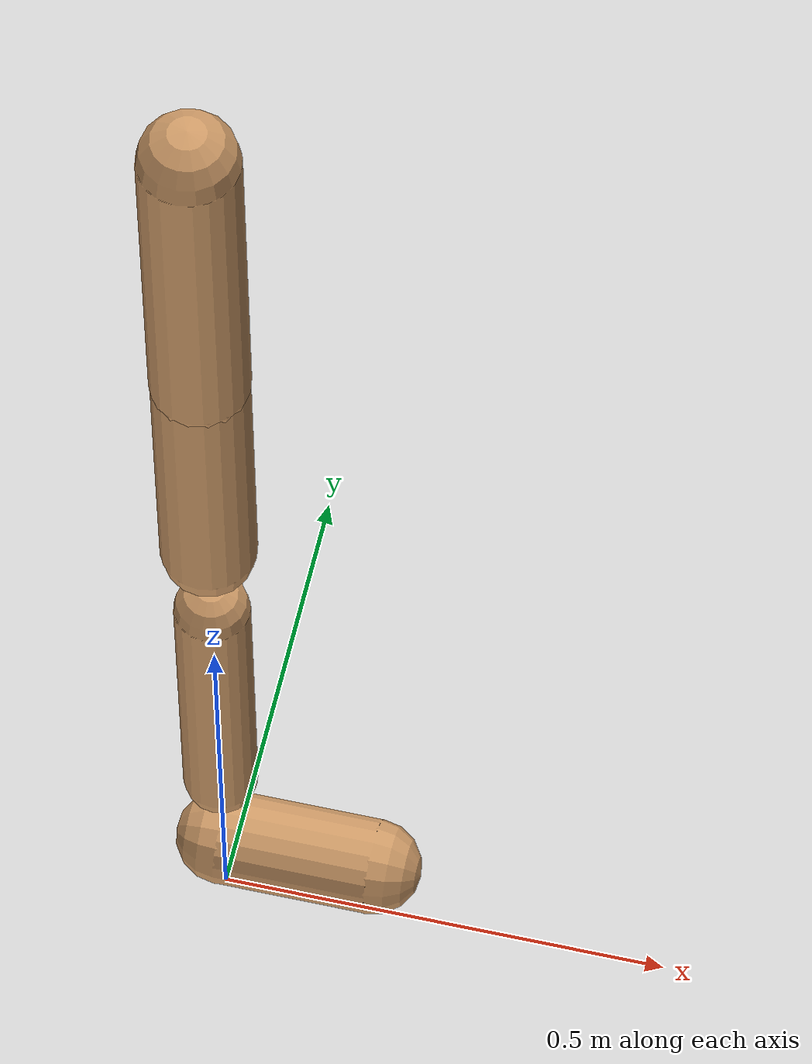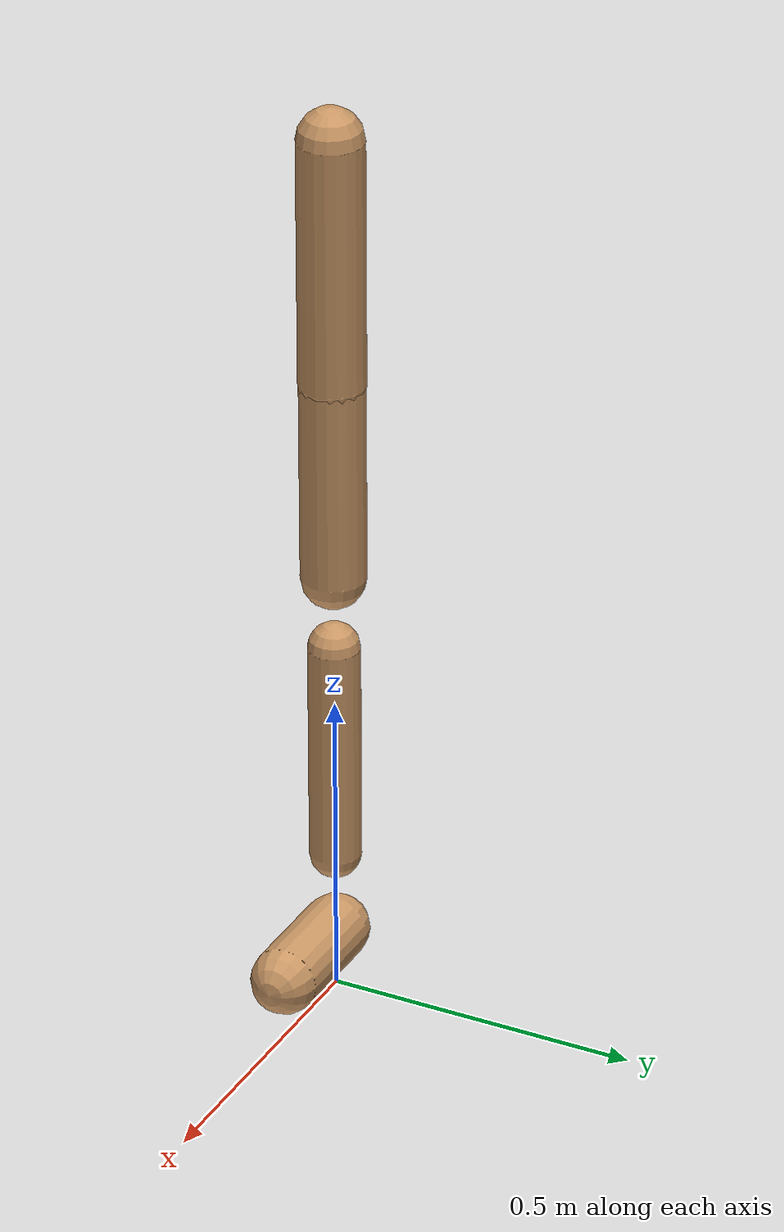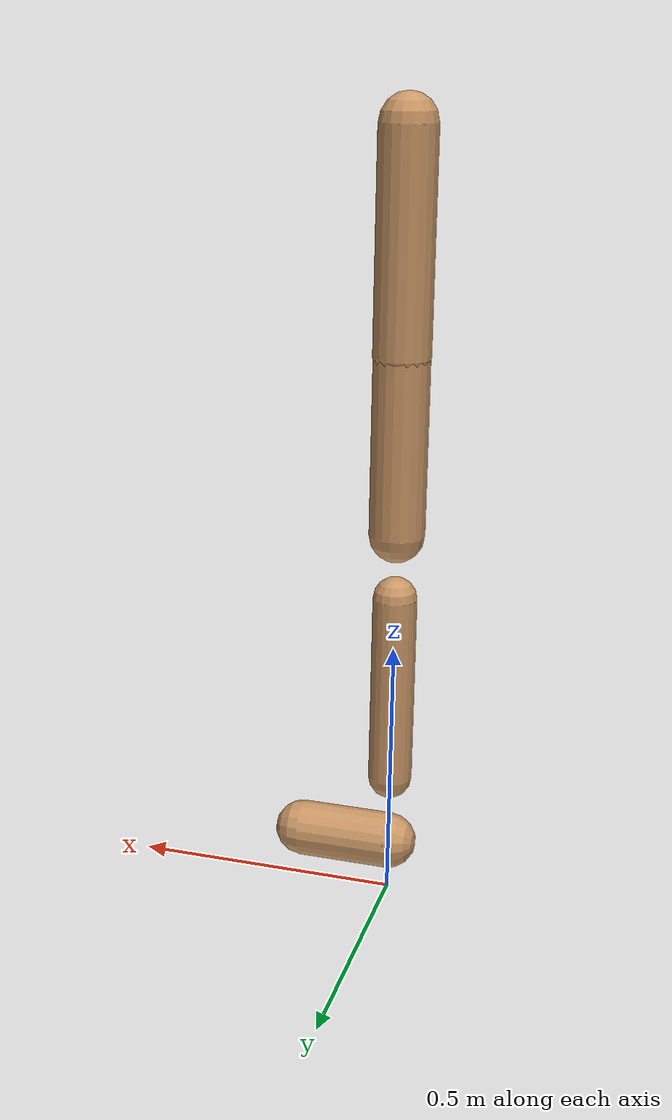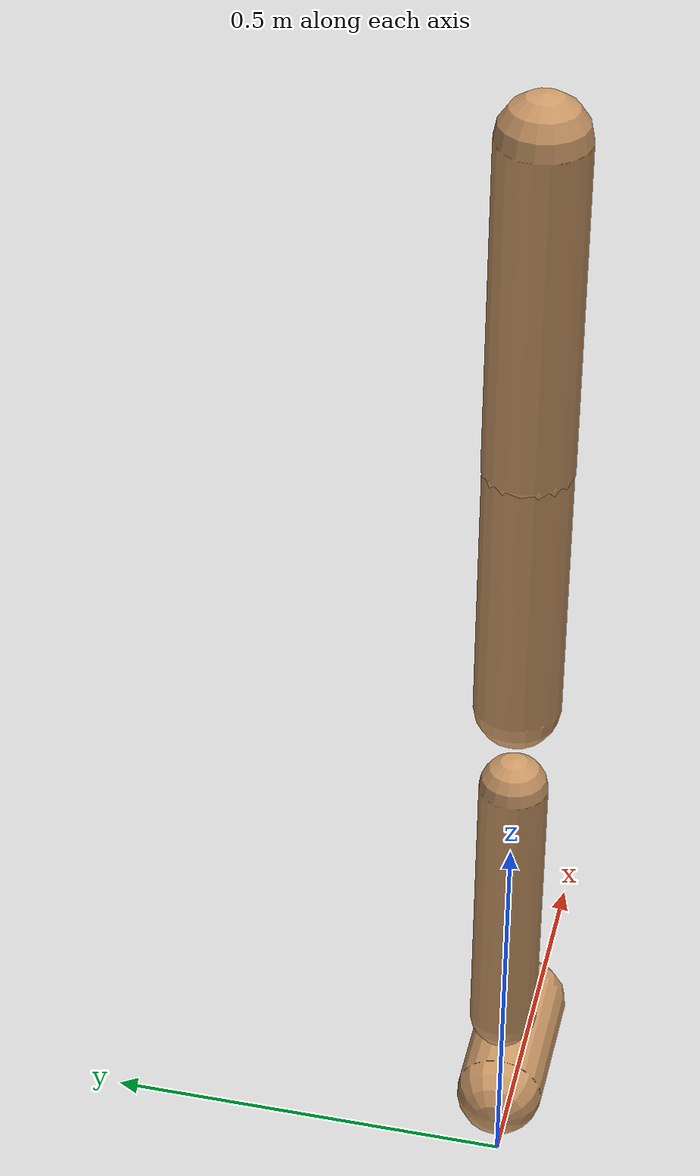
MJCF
<mujoco model="walker2d">
  <compiler angle="degree" coordinate="global" inertiafromgeom="true" />
  <default>
    <joint armature="0.01" damping=".1" limited="true" />
    <geom conaffinity="0" condim="3" contype="1" density="1000" friction="0.8 .1 .1" rgba="0.8 0.6 .4 1" />
  </default>
  <option integrator="RK4" timestep="0.002" />
  <worldbody>

    <body name="torso" pos="0 0 -0.26026626808486386">
      <joint armature="0" axis="1 0 0" damping="0" limited="false" name="ignorex" pos="0 0 0" stiffness="0" type="slide" />
      <joint armature="0" axis="0 0 1" damping="0" limited="false" name="ignorez" pos="0 0 0" ref="1.25" stiffness="0" type="slide" />
      <joint armature="0" axis="0 1 0" damping="0" limited="false" name="ignorey" pos="0 0 0" stiffness="0" type="hinge" />
      <geom fromto="0 0 1.45 0 0 1.05" name="torso_geom" size="0.05226893532290672" type="capsule" />
      <body name="thigh">
        <joint axis="0 -1 0" name="thigh_joint" pos="0 0 1.05" range="-150 0" type="hinge" />
        <geom fromto="0.0 0.0 1.05 0.0 0.0 0.7232840217244092" name="thigh_geom" size="0.05126395068191495" type="capsule" />
        <body name="leg" pos="0.0 0.0 0.12328402172440922">
          <joint axis="0 -1 0" name="leg_joint" pos="0 0 0.6" range="-150 0" type="hinge" />
          <geom fromto="0.0 0.0 0.6 0.0 0.0 0.23698224636045467" name="leg_geom" size="0.04101116054553196" type="capsule" />
          <body name="foot" pos="0.0 0.0 0.13698224636045467">
            <joint axis="0 -1 0" name="foot_joint" pos="0 0 0.1" range="-45 45" type="hinge" />
            <geom fromto="0.0 0.0 0.1 0.17066137513538127 0.0 0.1" name="foot_geom" size="0.05340305264925313" type="capsule" />
          </body>
        </body>
      </body>

      <body name="thigh_left">
        <joint axis="0 -1 0" name="thigh_left_joint" pos="0 0 1.05" range="-150 0" type="hinge" />
        <geom fromto="0.0 0.0 1.05 0.0 0.0 0.7232840217244092" name="thigh_left_geom" rgba=".7 .3 .6 1" size="0.05126395068191495" type="capsule" />
        <body name="leg_left" pos="0.0 0.0 0.12328402172440922">
          <joint axis="0 -1 0" name="leg_left_joint" pos="0 0 0.6" range="-150 0" type="hinge" />
          <geom fromto="0.0 0.0 0.6 0.0 0.0 0.23698224636045467" name="leg_left_geom" rgba=".7 .3 .6 1" size="0.04101116054553196" type="capsule" />
          <body name="foot_left" pos="0.0 0.0 0.13698224636045467">
            <joint axis="0 -1 0" name="foot_left_joint" pos="0 0 0.1" range="-45 45" type="hinge" />
            <geom fromto="0.0 0.0 0.1 0.17066137513538127 0.0 0.1" name="foot_left_geom" rgba=".7 .3 .6 1" size="0.05340305264925313" type="capsule" />
          </body>
        </body>
      </body>
    </body>
  </worldbody>
  <actuator>

    <motor ctrllimited="true" ctrlrange="-1.0 1.0" gear="100" joint="thigh_joint" />
    <motor ctrllimited="true" ctrlrange="-1.0 1.0" gear="100" joint="leg_joint" />
    <motor ctrllimited="true" ctrlrange="-1.0 1.0" gear="100" joint="foot_joint" />
    <motor ctrllimited="true" ctrlrange="-1.0 1.0" gear="100" joint="thigh_left_joint" />
    <motor ctrllimited="true" ctrlrange="-1.0 1.0" gear="100" joint="leg_left_joint" />
    <motor ctrllimited="true" ctrlrange="-1.0 1.0" gear="100" joint="foot_left_joint" />

  </actuator>
</mujoco>
